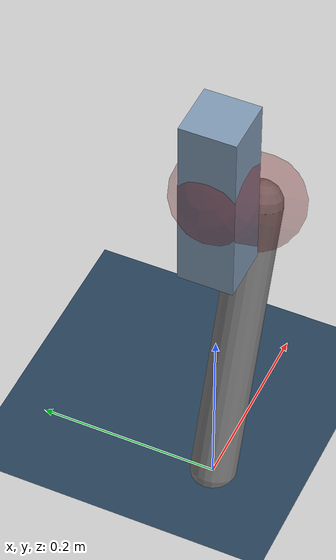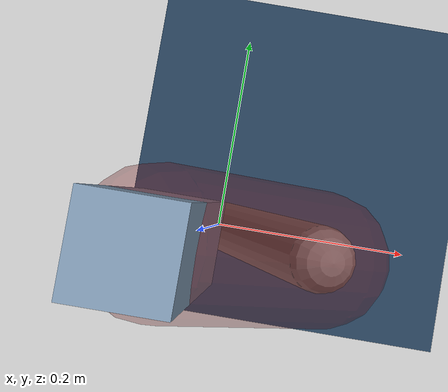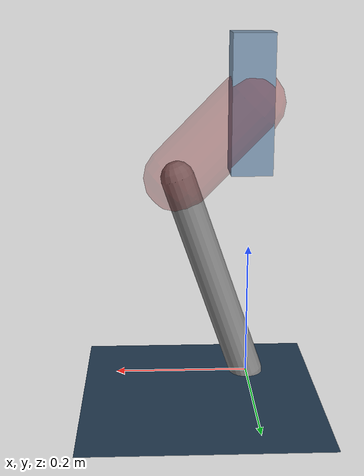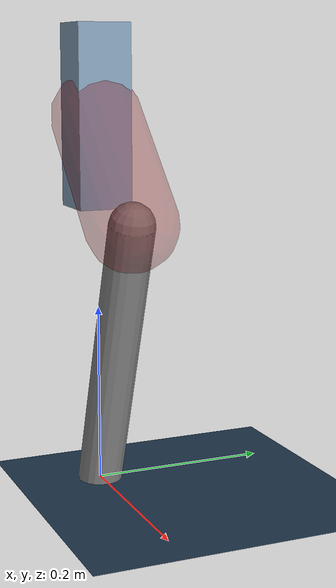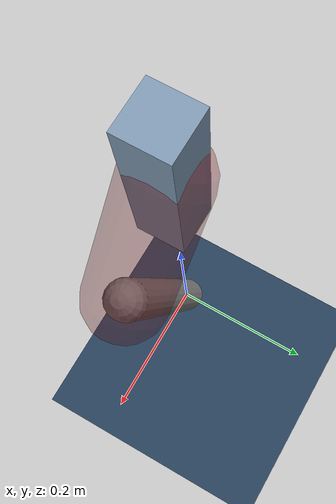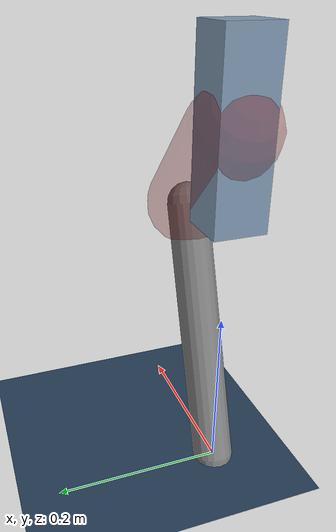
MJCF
<mujoco model="Hopper2D">
	<compiler inertiafromgeom="true" angle="radian" />
	<option timestep="0.001" integrator="implicit" cone="elliptic" solver="Newton" tolerance="1e-10" />

	<default>
		<geom contype="1" conaffinity="1" condim="3" friction="2 0.005 0.0001" solref="0.005 1" />
		<joint limited="true" damping="0.1" />
	</default>

	<asset>
		<texture name="skybox" type="skybox" builtin="gradient" rgb1=".4 .6 .8" rgb2="0 0 0" width="800" height="800" />
		<texture name="grid" type="2d" builtin="checker" rgb1=".1 .2 .3" rgb2=".2 .3 .4" width="300" height="300" mark="edge" markrgb=".2 .3 .4" />
		<material name="ground" texture="grid" texrepeat="1 1" texuniform="true" reflectance="0.1" />
		<material name="leg" rgba="0.5 0.6 0.7 1" />
	</asset>

	<worldbody>

		<geom name="floor" type="plane" size="5 5 0.25" material="ground" />

		<light directional="false" diffuse="0.8 0.8 0.8" specular="0.3 0.3 0.3" pos="0 0 2" dir="0 0 -1" />
		<light mode="targetbodycom" target="base" directional="false" diffuse="0.8 0.8 0.8" specular="0.3 0.3 0.3" pos="0 0 2" dir="0 0 -1" />

		<camera name="fixed" pos="0 -2 1" xyaxes="1 0 0 0 0 1" />
		<camera name="tracking" mode="trackcom" pos="0 -3 1" />

		<body name="root" pos="0 0 0.4147798917039024">
			<joint name="slide_x" type="slide" axis="1 0 0" range="-100 100" />
			<joint name="slide_z" type="slide" axis="0 0 1" range="0 10" />

			<body name="base" pos="0 0 0">
				<geom name="torso" type="box" size="0.03 0.03 0.1" mass="1.4740000000000002" material="leg" />

				<body name="link1" pos="0 0 0" euler="0 0.795182787416088 0">
					<joint type="hinge" axis="0 -1 0" pos="0 0 0" name="hinge1" limited="true" range="-3.14 3.14" stiffness="0" damping="0.1" />
					<geom name="thigh" type="capsule" fromto="0 0 0 0.15097407936714397 0 0" size="0.05" rgba="0.5 0 0 0.3" mass="0.6108377904811455" />

					<body name="link2" pos="0.15097407936714397 0 0" euler="0 1.107230476870598 0">
						<joint type="hinge" axis="0 -1 0" pos="0 0 0" name="hinge2" limited="true" range="-3.14 3.14" stiffness="0" damping="0.1" />
						<geom name="shank" type="capsule" fromto="0 0 0 0.3246748806960407 0 0" size="0.025" mass="0.5034399045568326" />

					</body>
				</body>
			</body>
		</body>
	</worldbody>

	<actuator>
		<motor name="torque1" joint="hinge1" ctrlrange="-38.34642434677449 38.34642434677449" ctrllimited="true" gear="1" />
		<motor name="torque2" joint="hinge2" ctrlrange="-28.725412544376997 28.725412544376997" ctrllimited="true" gear="1" />
	</actuator>
</mujoco>
